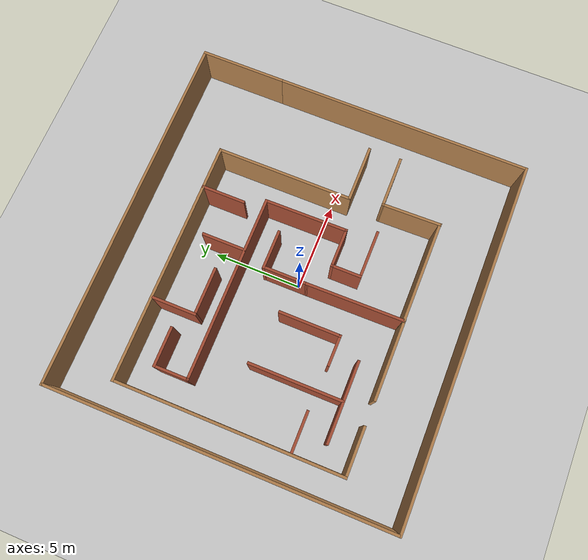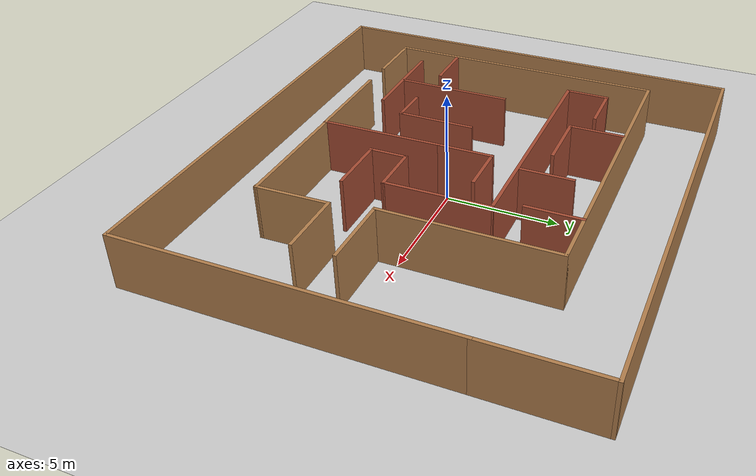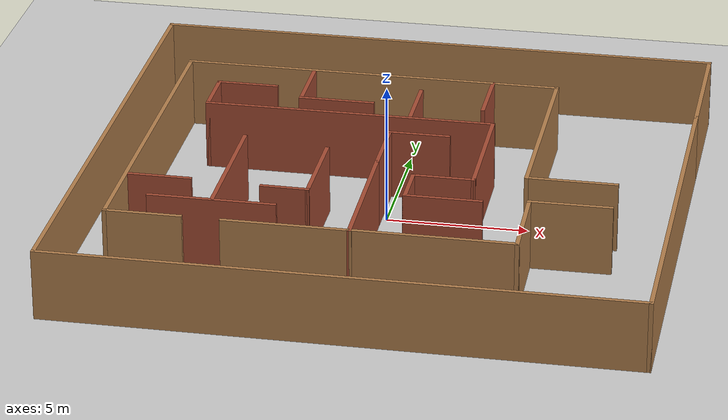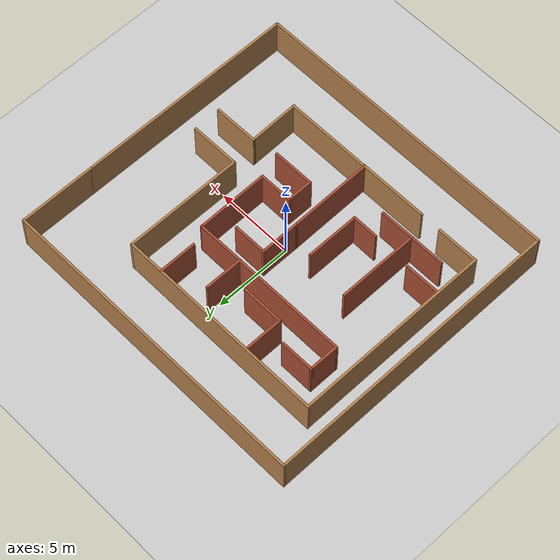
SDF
<?xml version='1.0'?>
<sdf version='1.7'>
  <world name="maze">
    <gravity>0 0 -9.8</gravity>

    <!-- A global light source -->
    <light type="directional" name="sun">
      <cast_shadows>true</cast_shadows>
      <pose>0 0 10 0 0 0</pose>
      <diffuse>0.8 0.8 0.8 1</diffuse>
      <specular>0.8 0.8 0.8 1</specular>
      <attenuation>
        <range>1000</range>
        <constant>0.9</constant>
        <linear>0.01</linear>
        <quadratic>0.001</quadratic>
      </attenuation>
      <direction>-0.5 0.1 -0.9</direction>
    </light>

    <!-- A ground plane -->
    <model name="ground_plane">
      <static>true</static>
      <link name="link">
        <collision name="collision">
          <geometry>
            <plane>
              <normal>0 0 1</normal>
              <size>100 100</size>
            </plane>
          </geometry>
        </collision>
        <visual name="visual">
          <geometry>
            <plane>
              <normal>0 0 1</normal>
              <size>100 100</size>
            </plane>
          </geometry>
          <material>
            <ambient>0.8 0.8 0.8 1</ambient>
            <diffuse>0.8 0.8 0.8 1</diffuse>
            <specular>0.8 0.8 0.8 1</specular>
          </material>
        </visual>
      </link>
    </model>

    <model name='maze'>
      <pose>0.086567 0.339517 0 0 -0 0</pose>
      <link name='Wall_10'>
        <collision name='Wall_10_Collision'>
          <geometry>
            <box>
              <size>12.75 0.15 2.5</size>
            </box>
          </geometry>
          <pose>0 0 1.25 0 -0 0</pose>
        </collision>
        <visual name='Wall_10_Visual'>
          <pose>0 0 1.25 0 -0 0</pose>
          <geometry>
            <box>
              <size>12.75 0.15 2.5</size>
            </box>
          </geometry>
          <material>
            <script>
              <uri>file://media/materials/scripts/gazebo.material</uri>
              <name>Gazebo/Wood</name>
            </script>
            <ambient>1 1 1 1</ambient>
          </material>
          <meta>
            <layer>0</layer>
          </meta>
        </visual>
        <pose>-8.65259 0.071896 0 0 -0 -1.5708</pose>
      </link>
      <link name='Wall_11'>
        <collision name='Wall_11_Collision'>
          <geometry>
            <box>
              <size>2.75 0.15 2.5</size>
            </box>
          </geometry>
          <pose>0 0 1.25 0 -0 0</pose>
        </collision>
        <visual name='Wall_11_Visual'>
          <pose>0 0 1.25 0 -0 0</pose>
          <geometry>
            <box>
              <size>2.75 0.15 2.5</size>
            </box>
          </geometry>
          <material>
            <script>
              <uri>file://media/materials/scripts/gazebo.material</uri>
              <name>Gazebo/Wood</name>
            </script>
            <ambient>1 1 1 1</ambient>
          </material>
          <meta>
            <layer>0</layer>
          </meta>
        </visual>
        <pose>-7.35259 -6.2281 0 0 -0 0</pose>
      </link>
      <link name='Wall_13'>
        <collision name='Wall_13_Collision'>
          <geometry>
            <box>
              <size>4.5 0.15 2.5</size>
            </box>
          </geometry>
          <pose>0 0 1.25 0 -0 0</pose>
        </collision>
        <visual name='Wall_13_Visual'>
          <pose>0 0 1.25 0 -0 0</pose>
          <geometry>
            <box>
              <size>4.5 0.15 2.5</size>
            </box>
          </geometry>
          <material>
            <script>
              <uri>file://media/materials/scripts/gazebo.material</uri>
              <name>Gazebo/Bricks</name>
            </script>
            <ambient>1 1 1 1</ambient>
          </material>
          <meta>
            <layer>0</layer>
          </meta>
        </visual>
        <pose>-5.30054 -4.81013 0 0 -0 0</pose>
      </link>
      <link name='Wall_15'>
        <collision name='Wall_15_Collision'>
          <geometry>
            <box>
              <size>5.25 0.15 2.5</size>
            </box>
          </geometry>
          <pose>0 0 1.25 0 -0 0</pose>
        </collision>
        <visual name='Wall_15_Visual'>
          <pose>0 0 1.25 0 -0 0</pose>
          <geometry>
            <box>
              <size>5.25 0.15 2.5</size>
            </box>
          </geometry>
          <material>
            <script>
              <uri>file://media/materials/scripts/gazebo.material</uri>
              <name>Gazebo/Bricks</name>
            </script>
            <ambient>1 1 1 1</ambient>
          </material>
          <meta>
            <layer>0</layer>
          </meta>
        </visual>
        <pose>-5.28194 -2.20662 0 0 -0 1.5708</pose>
      </link>
      <link name='Wall_18'>
        <collision name='Wall_18_Collision'>
          <geometry>
            <box>
              <size>4.5 0.15 2.5</size>
            </box>
          </geometry>
          <pose>0 0 1.25 0 -0 0</pose>
        </collision>
        <visual name='Wall_18_Visual'>
          <pose>0 0 1.25 0 -0 0</pose>
          <geometry>
            <box>
              <size>4.5 0.15 2.5</size>
            </box>
          </geometry>
          <material>
            <script>
              <uri>file://media/materials/scripts/gazebo.material</uri>
              <name>Gazebo/Wood</name>
            </script>
            <ambient>1 1 1 1</ambient>
          </material>
          <meta>
            <layer>0</layer>
          </meta>
        </visual>
        <pose>-2.42972 -6.25355 0 0 -0 0</pose>
      </link>
      <link name='Wall_19'>
        <collision name='Wall_19_Collision'>
          <geometry>
            <box>
              <size>5.54597 0.15 2.5</size>
            </box>
          </geometry>
          <pose>0 0 1.25 0 -0 0</pose>
        </collision>
        <visual name='Wall_19_Visual'>
          <pose>0 0 1.25 0 -0 0</pose>
          <geometry>
            <box>
              <size>5.54597 0.15 2.5</size>
            </box>
          </geometry>
          <material>
            <script>
              <uri>file://media/materials/scripts/gazebo.material</uri>
              <name>Gazebo/Bricks</name>
            </script>
            <ambient>1 1 1 1</ambient>
          </material>
          <meta>
            <layer>0</layer>
          </meta>
        </visual>
        <pose>-0.300346 -3.55574 0 0 -0 1.58207</pose>
      </link>
      <link name='Wall_21'>
        <collision name='Wall_21_Collision'>
          <geometry>
            <box>
              <size>1.73298 0.15 2.5</size>
            </box>
          </geometry>
          <pose>0 0 1.25 0 -0 0</pose>
        </collision>
        <visual name='Wall_21_Visual'>
          <pose>0 0 1.25 0 -0 0</pose>
          <geometry>
            <box>
              <size>1.73298 0.15 2.5</size>
            </box>
          </geometry>
          <material>
            <script>
              <uri>file://media/materials/scripts/gazebo.material</uri>
              <name>Gazebo/Bricks</name>
            </script>
            <ambient>1 1 1 1</ambient>
          </material>
          <meta>
            <layer>0</layer>
          </meta>
        </visual>
        <pose>-3.05282 -3.46241 0 0 -0 -0.009608</pose>
      </link>
      <link name='Wall_22'>
        <collision name='Wall_22_Collision'>
          <geometry>
            <box>
              <size>3.5 0.15 2.5</size>
            </box>
          </geometry>
          <pose>0 0 1.25 0 -0 0</pose>
        </collision>
        <visual name='Wall_22_Visual'>
          <pose>0 0 1.25 0 -0 0</pose>
          <geometry>
            <box>
              <size>3.5 0.15 2.5</size>
            </box>
          </geometry>
          <material>
            <script>
              <uri>file://media/materials/scripts/gazebo.material</uri>
              <name>Gazebo/Bricks</name>
            </script>
            <ambient>1 1 1 1</ambient>
          </material>
          <meta>
            <layer>0</layer>
          </meta>
        </visual>
        <pose>-2.24616 -1.79502 0 0 -0 1.5708</pose>
      </link>
      <link name='Wall_25'>
        <collision name='Wall_25_Collision'>
          <geometry>
            <box>
              <size>2.25 0.15 2.5</size>
            </box>
          </geometry>
          <pose>0 0 1.25 0 -0 0</pose>
        </collision>
        <visual name='Wall_25_Visual'>
          <pose>0 0 1.25 0 -0 0</pose>
          <geometry>
            <box>
              <size>2.25 0.15 2.5</size>
            </box>
          </geometry>
          <material>
            <script>
              <uri>file://media/materials/scripts/gazebo.material</uri>
              <name>Gazebo/Bricks</name>
            </script>
            <ambient>1 1 1 1</ambient>
          </material>
          <meta>
            <layer>0</layer>
          </meta>
        </visual>
        <pose>-7.45437 -3.33245 0 0 -0 3.14159</pose>
      </link>
      <link name='Wall_27'>
        <collision name='Wall_27_Collision'>
          <geometry>
            <box>
              <size>10.5 0.15 2.5</size>
            </box>
          </geometry>
          <pose>0 0 1.25 0 -0 0</pose>
        </collision>
        <visual name='Wall_27_Visual'>
          <pose>0 0 1.25 0 -0 0</pose>
          <geometry>
            <box>
              <size>10.5 0.15 2.5</size>
            </box>
          </geometry>
          <material>
            <script>
              <uri>file://media/materials/scripts/gazebo.material</uri>
              <name>Gazebo/Bricks</name>
            </script>
            <ambient>1 1 1 1</ambient>
          </material>
          <meta>
            <layer>0</layer>
          </meta>
        </visual>
        <pose>-2.03195 2.88244 0 0 -0 0</pose>
      </link>
      <link name='Wall_28'>
        <collision name='Wall_28_Collision'>
          <geometry>
            <box>
              <size>4.75018 0.15 2.5</size>
            </box>
          </geometry>
          <pose>0 0 1.25 0 -0 0</pose>
        </collision>
        <visual name='Wall_28_Visual'>
          <pose>0 0 1.25 0 -0 0</pose>
          <geometry>
            <box>
              <size>4.75018 0.15 2.5</size>
            </box>
          </geometry>
          <material>
            <script>
              <uri>file://media/materials/scripts/gazebo.material</uri>
              <name>Gazebo/Bricks</name>
            </script>
            <ambient>1 1 1 1</ambient>
          </material>
          <meta>
            <layer>0</layer>
          </meta>
        </visual>
        <pose>3.16363 0.582444 0 0 -0 -1.56185</pose>
      </link>
      <link name='Wall_29'>
        <collision name='Wall_29_Collision'>
          <geometry>
            <box>
              <size>2.25 0.15 2.5</size>
            </box>
          </geometry>
          <pose>0 0 1.25 0 -0 0</pose>
        </collision>
        <visual name='Wall_29_Visual'>
          <pose>0 0 1.25 0 -0 0</pose>
          <geometry>
            <box>
              <size>2.25 0.15 2.5</size>
            </box>
          </geometry>
          <material>
            <script>
              <uri>file://media/materials/scripts/gazebo.material</uri>
              <name>Gazebo/Bricks</name>
            </script>
            <ambient>1 1 1 1</ambient>
          </material>
          <meta>
            <layer>0</layer>
          </meta>
        </visual>
        <pose>2.1342 -1.71756 0 0 -0 3.14159</pose>
      </link>
      <link name='Wall_31'>
        <collision name='Wall_31_Collision'>
          <geometry>
            <box>
              <size>13.75 0.15 2.5</size>
            </box>
          </geometry>
          <pose>0 0 1.25 0 -0 0</pose>
        </collision>
        <visual name='Wall_31_Visual'>
          <pose>0 0 1.25 0 -0 0</pose>
          <geometry>
            <box>
              <size>13.75 0.15 2.5</size>
            </box>
          </geometry>
          <material>
            <script>
              <uri>file://media/materials/scripts/gazebo.material</uri>
              <name>Gazebo/Wood</name>
            </script>
            <ambient>1 1 1 1</ambient>
          </material>
          <meta>
            <layer>0</layer>
          </meta>
        </visual>
        <pose>-1.85259 6.3719 0 0 -0 0</pose>
      </link>
      <link name='Wall_32'>
        <collision name='Wall_32_Collision'>
          <geometry>
            <box>
              <size>7.75 0.15 2.5</size>
            </box>
          </geometry>
          <pose>0 0 1.25 0 -0 0</pose>
        </collision>
        <visual name='Wall_32_Visual'>
          <pose>0 0 1.25 0 -0 0</pose>
          <geometry>
            <box>
              <size>7.75 0.15 2.5</size>
            </box>
          </geometry>
          <material>
            <script>
              <uri>file://media/materials/scripts/gazebo.material</uri>
              <name>Gazebo/Wood</name>
            </script>
            <ambient>1 1 1 1</ambient>
          </material>
          <meta>
            <layer>0</layer>
          </meta>
        </visual>
        <pose>4.9474 2.5719 0 0 -0 -1.5708</pose>
      </link>
      <link name='Wall_33'>
        <collision name='Wall_33_Collision'>
          <geometry>
            <box>
              <size>3.25 0.15 2.5</size>
            </box>
          </geometry>
          <pose>0 0 1.25 0 -0 0</pose>
        </collision>
        <visual name='Wall_33_Visual'>
          <pose>0 0 1.25 0 -0 0</pose>
          <geometry>
            <box>
              <size>3.25 0.15 2.5</size>
            </box>
          </geometry>
          <material>
            <script>
              <uri>file://media/materials/scripts/gazebo.material</uri>
              <name>Gazebo/Wood</name>
            </script>
            <ambient>1 1 1 1</ambient>
          </material>
          <meta>
            <layer>0</layer>
          </meta>
        </visual>
        <pose>6.4974 -1.2281 0 0 -0 0</pose>
      </link>
      <link name='Wall_35'>
        <collision name='Wall_35_Collision'>
          <geometry>
            <box>
              <size>2.93921 0.15 2.5</size>
            </box>
          </geometry>
          <pose>0 0 1.25 0 -0 0</pose>
        </collision>
        <visual name='Wall_35_Visual'>
          <pose>0 0 1.25 0 -0 0</pose>
          <geometry>
            <box>
              <size>2.93921 0.15 2.5</size>
            </box>
          </geometry>
          <material>
            <script>
              <uri>file://media/materials/scripts/gazebo.material</uri>
              <name>Gazebo/Wood</name>
            </script>
            <ambient>1 1 1 1</ambient>
          </material>
          <meta>
            <layer>0</layer>
          </meta>
        </visual>
        <pose>6.69358 -3.02907 0 0 -0 -3.13614</pose>
      </link>
      <link name='Wall_36'>
        <collision name='Wall_36_Collision'>
          <geometry>
            <box>
              <size>3.36383 0.15 2.5</size>
            </box>
          </geometry>
          <pose>0 0 1.25 0 -0 0</pose>
        </collision>
        <visual name='Wall_36_Visual'>
          <pose>0 0 1.25 0 -0 0</pose>
          <geometry>
            <box>
              <size>3.36383 0.15 2.5</size>
            </box>
          </geometry>
          <material>
            <script>
              <uri>file://media/materials/scripts/gazebo.material</uri>
              <name>Gazebo/Wood</name>
            </script>
            <ambient>1 1 1 1</ambient>
          </material>
          <meta>
            <layer>0</layer>
          </meta>
        </visual>
        <pose>5.33275 -4.65845 0 0 -0 -1.54979</pose>
      </link>
      <link name='Wall_37'>
        <collision name='Wall_37_Collision'>
          <geometry>
            <box>
              <size>5.81086 0.15 2.5</size>
            </box>
          </geometry>
          <pose>0 0 1.25 0 -0 0</pose>
        </collision>
        <visual name='Wall_37_Visual'>
          <pose>0 0 1.25 0 -0 0</pose>
          <geometry>
            <box>
              <size>5.81086 0.15 2.5</size>
            </box>
          </geometry>
          <material>
            <script>
              <uri>file://media/materials/scripts/gazebo.material</uri>
              <name>Gazebo/Wood</name>
            </script>
            <ambient>1 1 1 1</ambient>
          </material>
          <meta>
            <layer>0</layer>
          </meta>
        </visual>
        <pose>2.53608 -6.2422 0 0 -0 3.13891</pose>
      </link>
      <link name='Wall_39'>
        <collision name='Wall_39_Collision'>
          <geometry>
            <box>
              <size>2 0.15 2.5</size>
            </box>
          </geometry>
          <pose>0 0 1.25 0 -0 0</pose>
        </collision>
        <visual name='Wall_39_Visual'>
          <pose>0 0 1.25 0 -0 0</pose>
          <geometry>
            <box>
              <size>2 0.15 2.5</size>
            </box>
          </geometry>
          <material>
            <script>
              <uri>file://media/materials/scripts/gazebo.material</uri>
              <name>Gazebo/Bricks</name>
            </script>
            <ambient>1 1 1 1</ambient>
          </material>
          <meta>
            <layer>0</layer>
          </meta>
        </visual>
        <pose>-7.20695 3.80744 0 0 -0 1.5708</pose>
      </link>
      <link name='Wall_4'>
        <collision name='Wall_4_Collision'>
          <geometry>
            <box>
              <size>20.5 0.15 2.5</size>
            </box>
          </geometry>
          <pose>0 0 1.25 0 -0 0</pose>
        </collision>
        <visual name='Wall_4_Visual'>
          <pose>0 0 1.25 0 -0 0</pose>
          <geometry>
            <box>
              <size>20.5 0.15 2.5</size>
            </box>
          </geometry>
          <material>
            <script>
              <uri>file://media/materials/scripts/gazebo.material</uri>
              <name>Gazebo/Wood</name>
            </script>
            <ambient>1 1 1 1</ambient>
          </material>
          <meta>
            <layer>0</layer>
          </meta>
        </visual>
        <pose>0 -9.6 0 0 -0 0</pose>
      </link>
      <link name='Wall_40'>
        <collision name='Wall_40_Collision'>
          <geometry>
            <box>
              <size>2.25 0.15 2.5</size>
            </box>
          </geometry>
          <pose>0 0 1.25 0 -0 0</pose>
        </collision>
        <visual name='Wall_40_Visual'>
          <pose>0 0 1.25 0 -0 0</pose>
          <geometry>
            <box>
              <size>2.25 0.15 2.5</size>
            </box>
          </geometry>
          <material>
            <script>
              <uri>file://media/materials/scripts/gazebo.material</uri>
              <name>Gazebo/Bricks</name>
            </script>
            <ambient>1 1 1 1</ambient>
          </material>
          <meta>
            <layer>0</layer>
          </meta>
        </visual>
        <pose>-6.15695 4.73244 0 0 -0 0</pose>
      </link>
      <link name='Wall_42'>
        <collision name='Wall_42_Collision'>
          <geometry>
            <box>
              <size>2.5 0.15 2.5</size>
            </box>
          </geometry>
          <pose>0 0 1.25 0 -0 0</pose>
        </collision>
        <visual name='Wall_42_Visual'>
          <pose>0 0 1.25 0 -0 0</pose>
          <geometry>
            <box>
              <size>2.5 0.15 2.5</size>
            </box>
          </geometry>
          <material>
            <script>
              <uri>file://media/materials/scripts/gazebo.material</uri>
              <name>Gazebo/Bricks</name>
            </script>
            <ambient>1 1 1 1</ambient>
          </material>
          <meta>
            <layer>0</layer>
          </meta>
        </visual>
        <pose>-3.99952 5.08632 0 0 -0 -1.5708</pose>
      </link>
      <link name='Wall_43'>
        <collision name='Wall_43_Collision'>
          <geometry>
            <box>
              <size>2.75 0.15 2.5</size>
            </box>
          </geometry>
          <pose>0 0 1.25 0 -0 0</pose>
        </collision>
        <visual name='Wall_43_Visual'>
          <pose>0 0 1.25 0 -0 0</pose>
          <geometry>
            <box>
              <size>2.75 0.15 2.5</size>
            </box>
          </geometry>
          <material>
            <script>
              <uri>file://media/materials/scripts/gazebo.material</uri>
              <name>Gazebo/Bricks</name>
            </script>
            <ambient>1 1 1 1</ambient>
          </material>
          <meta>
            <layer>0</layer>
          </meta>
        </visual>
        <pose>-2.69952 3.91132 0 0 -0 0</pose>
      </link>
      <link name='Wall_46'>
        <collision name='Wall_46_Collision'>
          <geometry>
            <box>
              <size>2.5 0.15 2.5</size>
            </box>
          </geometry>
          <pose>0 0 1.25 0 -0 0</pose>
        </collision>
        <visual name='Wall_46_Visual'>
          <pose>0 0 1.25 0 -0 0</pose>
          <geometry>
            <box>
              <size>2.5 0.15 2.5</size>
            </box>
          </geometry>
          <material>
            <script>
              <uri>file://media/materials/scripts/gazebo.material</uri>
              <name>Gazebo/Bricks</name>
            </script>
            <ambient>1 1 1 1</ambient>
          </material>
          <meta>
            <layer>0</layer>
          </meta>
        </visual>
        <pose>0.150113 4.07552 0 0 -0 -1.5708</pose>
      </link>
      <link name='Wall_48'>
        <collision name='Wall_48_Collision'>
          <geometry>
            <box>
              <size>2.5 0.15 2.5</size>
            </box>
          </geometry>
          <pose>0 0 1.25 0 -0 0</pose>
        </collision>
        <visual name='Wall_48_Visual'>
          <pose>0 0 1.25 0 -0 0</pose>
          <geometry>
            <box>
              <size>2.5 0.15 2.5</size>
            </box>
          </geometry>
          <material>
            <script>
              <uri>file://media/materials/scripts/gazebo.material</uri>
              <name>Gazebo/Bricks</name>
            </script>
            <ambient>1 1 1 1</ambient>
          </material>
          <meta>
            <layer>0</layer>
          </meta>
        </visual>
        <pose>2.61242 5.18783 0 0 -0 -1.5708</pose>
      </link>
      <link name='Wall_5'>
        <collision name='Wall_5_Collision'>
          <geometry>
            <box>
              <size>14.5 0.15 2.5</size>
            </box>
          </geometry>
          <pose>0 0 1.25 0 -0 0</pose>
        </collision>
        <visual name='Wall_5_Visual'>
          <pose>0 0 1.25 0 -0 0</pose>
          <geometry>
            <box>
              <size>14.5 0.15 2.5</size>
            </box>
          </geometry>
          <material>
            <script>
              <uri>file://media/materials/scripts/gazebo.material</uri>
              <name>Gazebo/Wood</name>
            </script>
            <ambient>1 1 1 1</ambient>
          </material>
          <meta>
            <layer>0</layer>
          </meta>
        </visual>
        <pose>10.175 -2.425 0 0 -0 1.5708</pose>
      </link>
      <link name='Wall_50'>
        <collision name='Wall_50_Collision'>
          <geometry>
            <box>
              <size>2.5925 0.15 2.5</size>
            </box>
          </geometry>
          <pose>0 0 1.25 0 -0 0</pose>
        </collision>
        <visual name='Wall_50_Visual'>
          <pose>0 0 1.25 0 -0 0</pose>
          <geometry>
            <box>
              <size>2.5925 0.15 2.5</size>
            </box>
          </geometry>
          <material>
            <script>
              <uri>file://media/materials/scripts/gazebo.material</uri>
              <name>Gazebo/Bricks</name>
            </script>
            <ambient>1 1 1 1</ambient>
          </material>
          <meta>
            <layer>0</layer>
          </meta>
        </visual>
        <pose>-0.330763 0.363322 0 0 -0 1.5708</pose>
      </link>
      <link name='Wall_51'>
        <collision name='Wall_51_Collision'>
          <geometry>
            <box>
              <size>2.25 0.15 2.5</size>
            </box>
          </geometry>
          <pose>0 0 1.25 0 -0 0</pose>
        </collision>
        <visual name='Wall_51_Visual'>
          <pose>0 0 1.25 0 -0 0</pose>
          <geometry>
            <box>
              <size>2.25 0.15 2.5</size>
            </box>
          </geometry>
          <material>
            <script>
              <uri>file://media/materials/scripts/gazebo.material</uri>
              <name>Gazebo/Bricks</name>
            </script>
            <ambient>1 1 1 1</ambient>
          </material>
          <meta>
            <layer>0</layer>
          </meta>
        </visual>
        <pose>0.707737 1.58457 0 0 -0 0</pose>
      </link>
      <link name='Wall_53'>
        <collision name='Wall_53_Collision'>
          <geometry>
            <box>
              <size>1.75 0.15 2.5</size>
            </box>
          </geometry>
          <pose>0 0 1.25 0 -0 0</pose>
        </collision>
        <visual name='Wall_53_Visual'>
          <pose>0 0 1.25 0 -0 0</pose>
          <geometry>
            <box>
              <size>1.75 0.15 2.5</size>
            </box>
          </geometry>
          <material>
            <script>
              <uri>file://media/materials/scripts/gazebo.material</uri>
              <name>Gazebo/Bricks</name>
            </script>
            <ambient>1 1 1 1</ambient>
          </material>
          <meta>
            <layer>0</layer>
          </meta>
        </visual>
        <pose>1.0842 -2.51756 0 0 -0 -1.5708</pose>
      </link>
      <link name='Wall_54'>
        <collision name='Wall_54_Collision'>
          <geometry>
            <box>
              <size>2.75 0.15 2.5</size>
            </box>
          </geometry>
          <pose>0 0 1.25 0 -0 0</pose>
        </collision>
        <visual name='Wall_54_Visual'>
          <pose>0 0 1.25 0 -0 0</pose>
          <geometry>
            <box>
              <size>2.75 0.15 2.5</size>
            </box>
          </geometry>
          <material>
            <script>
              <uri>file://media/materials/scripts/gazebo.material</uri>
              <name>Gazebo/Bricks</name>
            </script>
            <ambient>1 1 1 1</ambient>
          </material>
          <meta>
            <layer>0</layer>
          </meta>
        </visual>
        <pose>2.3842 -3.31756 0 0 -0 0</pose>
      </link>
      <link name='Wall_6'>
        <collision name='Wall_6_Collision'>
          <geometry>
            <box>
              <size>5 0.15 2.5</size>
            </box>
          </geometry>
          <pose>0 0 1.25 0 -0 0</pose>
        </collision>
        <visual name='Wall_6_Visual'>
          <pose>0 0 1.25 0 -0 0</pose>
          <geometry>
            <box>
              <size>5 0.15 2.5</size>
            </box>
          </geometry>
          <material>
            <script>
              <uri>file://media/materials/scripts/gazebo.material</uri>
              <name>Gazebo/Wood</name>
            </script>
            <ambient>1 1 1 1</ambient>
          </material>
          <meta>
            <layer>0</layer>
          </meta>
        </visual>
        <pose>10.175 7.175 0 0 -0 1.5708</pose>
      </link>
      <link name='Wall_7'>
        <collision name='Wall_7_Collision'>
          <geometry>
            <box>
              <size>20.5 0.15 2.5</size>
            </box>
          </geometry>
          <pose>0 0 1.25 0 -0 0</pose>
        </collision>
        <visual name='Wall_7_Visual'>
          <pose>0 0 1.25 0 -0 0</pose>
          <geometry>
            <box>
              <size>20.5 0.15 2.5</size>
            </box>
          </geometry>
          <material>
            <script>
              <uri>file://media/materials/scripts/gazebo.material</uri>
              <name>Gazebo/Wood</name>
            </script>
            <ambient>1 1 1 1</ambient>
          </material>
          <meta>
            <layer>0</layer>
          </meta>
        </visual>
        <pose>0 9.6 0 0 -0 3.14159</pose>
      </link>
      <link name='Wall_8'>
        <collision name='Wall_8_Collision'>
          <geometry>
            <box>
              <size>19.25 0.15 2.5</size>
            </box>
          </geometry>
          <pose>0 0 1.25 0 -0 0</pose>
        </collision>
        <visual name='Wall_8_Visual'>
          <pose>0 0 1.25 0 -0 0</pose>
          <geometry>
            <box>
              <size>19.25 0.15 2.5</size>
            </box>
          </geometry>
          <material>
            <script>
              <uri>file://media/materials/scripts/gazebo.material</uri>
              <name>Gazebo/Wood</name>
            </script>
            <ambient>1 1 1 1</ambient>
          </material>
          <meta>
            <layer>0</layer>
          </meta>
        </visual>
        <pose>-10.175 0.05 0 0 -0 -1.5708</pose>
      </link>
      <static>1</static>
    </model>
  </world>
</sdf>
